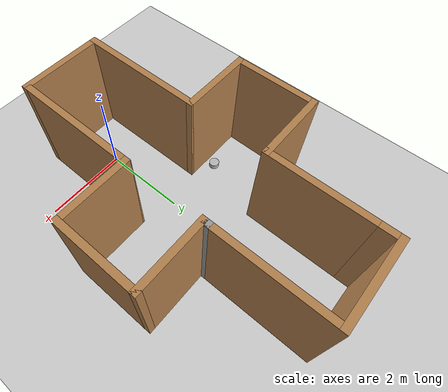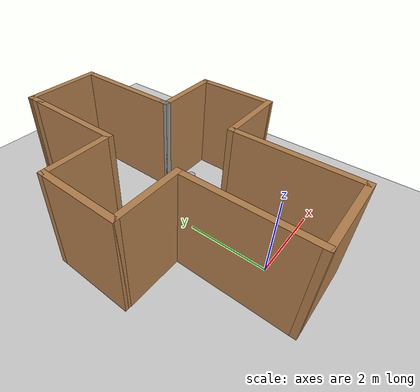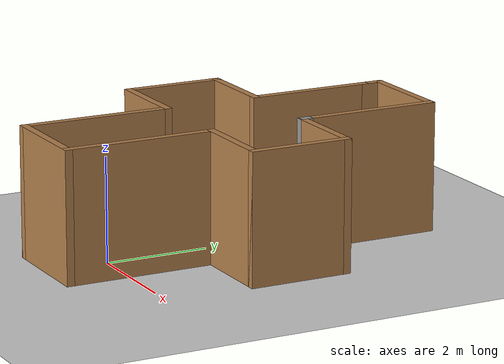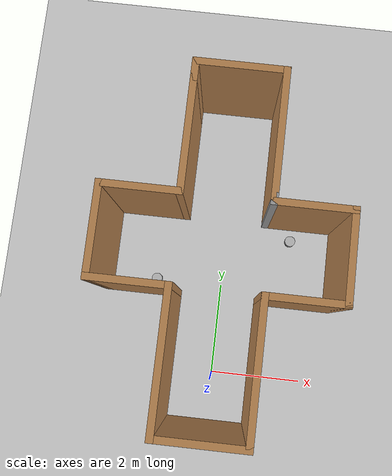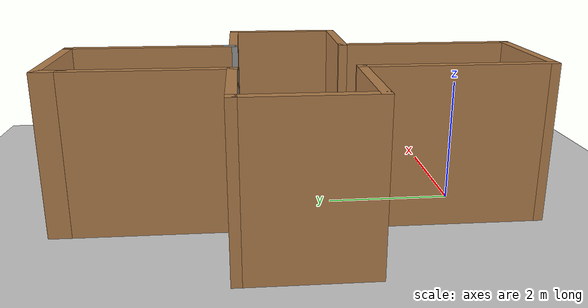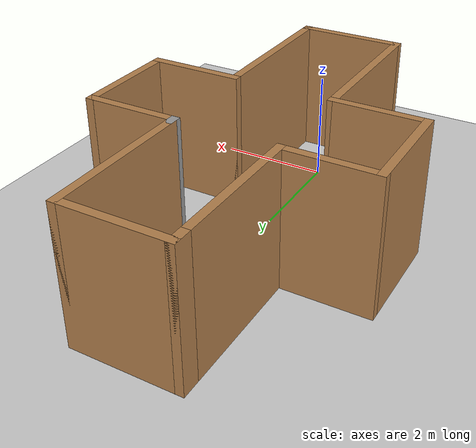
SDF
<sdf version="1.6">
 <world name="default">
  <light name="sun" type="directional">
   <pose>0 0 10 0 -0 0</pose>
   <diffuse>0.8 0.8 0.8 1</diffuse>
   <specular>0.2 0.2 0.2 1</specular>
   <attenuation>
    <range>1000</range>
    <constant>0.9</constant>
    <linear>0.01</linear>
    <quadratic>0.001</quadratic>
   </attenuation>
   <direction>0.5 0.1 -0.9</direction>
  </light>
  <model name="ground_plane">
   <static>1</static>
   <link name="link">
    <collision name="collision">
     <geometry><plane><normal>0 0 1</normal><size>100 100</size></plane></geometry>
     <surface><friction><ode><mu>100</mu><mu2>50</mu2></ode></friction></surface>
    </collision>
    <visual name="visual">
     <cast_shadows>0</cast_shadows>
     <geometry><plane><normal>0 0 1</normal><size>100 100</size></plane></geometry>
     <material>
      <script><uri>file://media/materials/scripts/gazebo.material</uri><name>Gazebo/Grey</name></script>
     </material>
    </visual>
    <velocity_decay><linear>0</linear><angular>0</angular></velocity_decay>
   </link>
  </model>
  <model name="obstacle_1">
   <pose>-1.5 2.0 0 0 0 0</pose>
   <link name="link">
    <collision name="collision">
     <geometry><cylinder><radius>0.12</radius><length>0.25</length></cylinder></geometry>
    </collision>
    <visual name="visual">
     <geometry><cylinder><radius>0.12</radius><length>0.25</length></cylinder></geometry>
    </visual>
   </link>
  </model>
  <model name="obstacle_2">
   <pose>1.5 3.2 0 0 0 0</pose>
   <link name="link">
    <collision name="collision">
     <geometry><cylinder><radius>0.12</radius><length>0.25</length></cylinder></geometry>
    </collision>
    <visual name="visual">
     <geometry><cylinder><radius>0.12</radius><length>0.25</length></cylinder></geometry>
    </visual>
   </link>
   <plugin name="obstacle_2" filename="libobstacle_2.so"/>
  </model>
  <gravity>0 0 -9.8</gravity>
  <magnetic_field>6e-06 2.3e-05 -4.2e-05</magnetic_field>
  <atmosphere type="adiabatic"/>
  <physics name="default_physics" default="0" type="ode">
   <real_time_update_rate>1000</real_time_update_rate>
   <max_step_size>0.001</max_step_size>
   <real_time_factor>1</real_time_factor>
  </physics>
  <scene><ambient>0.4 0.4 0.4 1</ambient><background>0.7 0.7 0.7 1</background><shadows>0</shadows></scene>
  <spherical_coordinates>
   <surface_model>EARTH_WGS84</surface_model>
   <latitude_deg>0</latitude_deg>
   <longitude_deg>0</longitude_deg>
   <elevation>0</elevation>
   <heading_deg>0</heading_deg>
  </spherical_coordinates>
  <model name="Untitled_1_clone">
   <pose>-0.049098 2.55317 0 0 -0 0</pose>
   <link name="Wall_14">
    <collision name="Wall_14_Collision">
     <geometry><box><size>3 0.15 2.5</size></box></geometry>
     <pose>0 0 1.25 0 -0 0</pose>
    </collision>
    <visual name="Wall_14_Visual">
     <pose>0 0 1.25 0 -0 0</pose>
     <geometry><box><size>3 0.15 2.5</size></box></geometry>
     <material>
      <script><uri>file://media/materials/scripts/gazebo.material</uri><name>Gazebo/Wood</name></script>
      <ambient>1 1 1 1</ambient>
     </material>
    </visual>
    <pose>-0.925 -2.275 0 0 -0 1.5708</pose>
   </link>
   <link name="Wall_18">
    <collision name="Wall_18_Collision">
     <geometry><box><size>2.50034 0.15 2.5</size></box></geometry>
     <pose>0 0 1.25 0 -0 0</pose>
    </collision>
    <visual name="Wall_18_Visual">
     <pose>0 0 1.25 0 -0 0</pose>
     <geometry><box><size>2.50034 0.15 2.5</size></box></geometry>
     <material>
      <script><uri>file://media/materials/scripts/gazebo.material</uri><name>Gazebo/Wood</name></script>
      <ambient>1 1 1 1</ambient>
     </material>
    </visual>
    <pose>-0.925 2.175 0 0 -0 1.5708</pose>
   </link>
   <link name="Wall_19">
    <collision name="Wall_19_Collision">
     <geometry><box><size>0.5 0.15 2.5</size></box></geometry>
     <pose>0 0 1.25 0 -0 0</pose>
    </collision>
    <visual name="Wall_19_Visual">
     <pose>0 0 1.25 0 -0 0</pose>
     <geometry><box><size>0.5 0.15 2.5</size></box></geometry>
     <material>
      <script><uri>file://media/materials/scripts/gazebo.material</uri><name>Gazebo/Wood</name></script>
      <ambient>1 1 1 1</ambient>
     </material>
    </visual>
    <pose>-0.925 3.525 0 0 -0 1.5708</pose>
   </link>
   <link name="Wall_20">
    <collision name="Wall_20_Collision">
     <geometry><box><size>2 0.15 2.5</size></box></geometry>
     <pose>0 0 1.25 0 -0 0</pose>
    </collision>
    <visual name="Wall_20_Visual">
     <pose>0 0 1.25 0 -0 0</pose>
     <geometry><box><size>2 0.15 2.5</size></box></geometry>
     <material>
      <script><uri>file://media/materials/scripts/gazebo.material</uri><name>Gazebo/Wood</name></script>
      <ambient>1 1 1 1</ambient>
     </material>
    </visual>
    <pose>0 3.7 0 0 -0 0</pose>
   </link>
   <link name="Wall_21">
    <collision name="Wall_21_Collision">
     <geometry><box><size>2.75 0.15 2.5</size></box></geometry>
     <pose>0 0 1.25 0 -0 0</pose>
    </collision>
    <visual name="Wall_21_Visual">
     <pose>0 0 1.25 0 -0 0</pose>
     <geometry><box><size>2.75 0.15 2.5</size></box></geometry>
     <material>
      <script><uri>file://media/materials/scripts/gazebo.material</uri><name>Gazebo/Wood</name></script>
      <ambient>1 1 1 1</ambient>
     </material>
    </visual>
    <pose>0.925 2.4 0 0 0 -1.5708</pose>
   </link>
   <link name="Wall_23">
    <collision name="Wall_23_Collision">
     <geometry><box><size>0.25 0.15 2.5</size></box></geometry>
     <pose>0 0 1.25 0 -0 0</pose>
    </collision>
    <visual name="Wall_23_Visual">
     <pose>0 0 1.25 0 -0 0</pose>
     <geometry><box><size>0.25 0.15 2.5</size></box></geometry>
     <material>
      <script><uri>file://media/materials/scripts/gazebo.material</uri><name>Gazebo/Grey</name></script>
      <ambient>1 1 1 1</ambient>
     </material>
    </visual>
    <pose>0.925 1.05 0 0 0 -1.5708</pose>
   </link>
   <link name="Wall_27">
    <collision name="Wall_27_Collision">
     <geometry><box><size>3 0.15 2.5</size></box></geometry>
     <pose>0 0 1.25 0 -0 0</pose>
    </collision>
    <visual name="Wall_27_Visual">
     <pose>0 0 1.25 0 -0 0</pose>
     <geometry><box><size>3 0.15 2.5</size></box></geometry>
     <material>
      <script><uri>file://media/materials/scripts/gazebo.material</uri><name>Gazebo/Wood</name></script>
      <ambient>1 1 1 1</ambient>
     </material>
    </visual>
    <pose>0.925 -2.275 0 0 0 -1.5708</pose>
   </link>
   <link name="Wall_28">
    <collision name="Wall_28_Collision">
     <geometry><box><size>2 0.15 2.5</size></box></geometry>
     <pose>0 0 1.25 0 -0 0</pose>
    </collision>
    <visual name="Wall_28_Visual">
     <pose>0 0 1.25 0 -0 0</pose>
     <geometry><box><size>2 0.15 2.5</size></box></geometry>
     <material>
      <script><uri>file://media/materials/scripts/gazebo.material</uri><name>Gazebo/Wood</name></script>
      <ambient>1 1 1 1</ambient>
     </material>
    </visual>
    <pose>0 -3.7 0 0 -0 3.14159</pose>
   </link>
   <link name="Wall_30">
    <collision name="Wall_30_Collision">
     <geometry><box><size>1.75 0.15 2.5</size></box></geometry>
     <pose>0 0 1.25 0 -0 0</pose>
    </collision>
    <visual name="Wall_30_Visual">
     <pose>0 0 1.25 0 -0 0</pose>
     <geometry><box><size>1.75 0.15 2.5</size></box></geometry>
     <material>
      <script><uri>file://media/materials/scripts/gazebo.material</uri><name>Gazebo/Wood</name></script>
      <ambient>1 1 1 1</ambient>
     </material>
    </visual>
    <pose>-1.725 1 0 0 -0 3.14159</pose>
   </link>
   <link name="Wall_31">
    <collision name="Wall_31_Collision">
     <geometry><box><size>2 0.15 2.5</size></box></geometry>
     <pose>0 0 1.25 0 -0 0</pose>
    </collision>
    <visual name="Wall_31_Visual">
     <pose>0 0 1.25 0 -0 0</pose>
     <geometry><box><size>2 0.15 2.5</size></box></geometry>
     <material>
      <script><uri>file://media/materials/scripts/gazebo.material</uri><name>Gazebo/Wood</name></script>
      <ambient>1 1 1 1</ambient>
     </material>
    </visual>
    <pose>-2.525 0.075 0 0 0 -1.5708</pose>
   </link>
   <link name="Wall_32">
    <collision name="Wall_32_Collision">
     <geometry><box><size>1.75 0.15 2.5</size></box></geometry>
     <pose>0 0 1.25 0 -0 0</pose>
    </collision>
    <visual name="Wall_32_Visual">
     <pose>0 0 1.25 0 -0 0</pose>
     <geometry><box><size>1.75 0.15 2.5</size></box></geometry>
     <material>
      <script><uri>file://media/materials/scripts/gazebo.material</uri><name>Gazebo/Wood</name></script>
      <ambient>1 1 1 1</ambient>
     </material>
    </visual>
    <pose>-1.725 -0.85 0 0 -0 0</pose>
   </link>
   <link name="Wall_41">
    <collision name="Wall_41_Collision">
     <geometry><box><size>1.75 0.15 2.5</size></box></geometry>
     <pose>0 0 1.25 0 -0 0</pose>
    </collision>
    <visual name="Wall_41_Visual">
     <pose>0 0 1.25 0 -0 0</pose>
     <geometry><box><size>1.75 0.15 2.5</size></box></geometry>
     <material>
      <script><uri>file://media/materials/scripts/gazebo.material</uri><name>Gazebo/Wood</name></script>
      <ambient>1 1 1 1</ambient>
     </material>
    </visual>
    <pose>1.725 -0.85 0 0 -0 0</pose>
   </link>
   <link name="Wall_42">
    <collision name="Wall_42_Collision">
     <geometry><box><size>2 0.15 2.5</size></box></geometry>
     <pose>0 0 1.25 0 -0 0</pose>
    </collision>
    <visual name="Wall_42_Visual">
     <pose>0 0 1.25 0 -0 0</pose>
     <geometry><box><size>2 0.15 2.5</size></box></geometry>
     <material>
      <script><uri>file://media/materials/scripts/gazebo.material</uri><name>Gazebo/Wood</name></script>
      <ambient>1 1 1 1</ambient>
     </material>
    </visual>
    <pose>2.525 0.075 0 0 -0 1.5708</pose>
   </link>
   <link name="Wall_43">
    <collision name="Wall_43_Collision">
     <geometry><box><size>1.75 0.15 2.5</size></box></geometry>
     <pose>0 0 1.25 0 -0 0</pose>
    </collision>
    <visual name="Wall_43_Visual">
     <pose>0 0 1.25 0 -0 0</pose>
     <geometry><box><size>1.75 0.15 2.5</size></box></geometry>
     <material>
      <script><uri>file://media/materials/scripts/gazebo.material</uri><name>Gazebo/Wood</name></script>
      <ambient>1 1 1 1</ambient>
     </material>
    </visual>
    <pose>1.725 1 0 0 -0 3.14159</pose>
   </link>
   <static>1</static>
  </model>
 </world>
</sdf>
